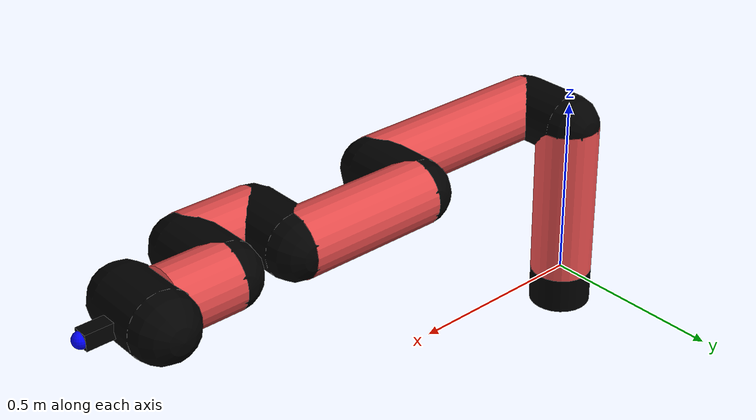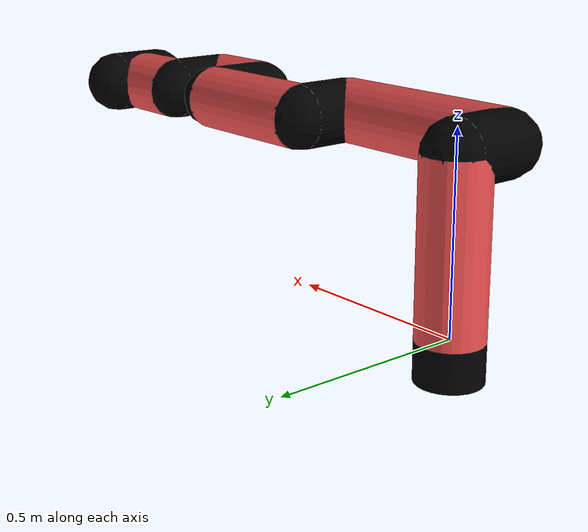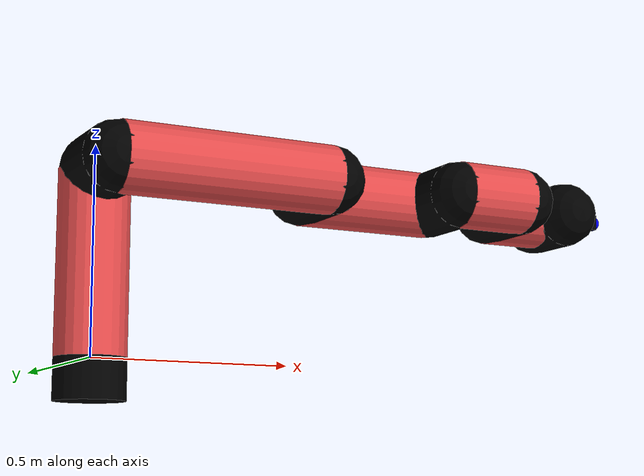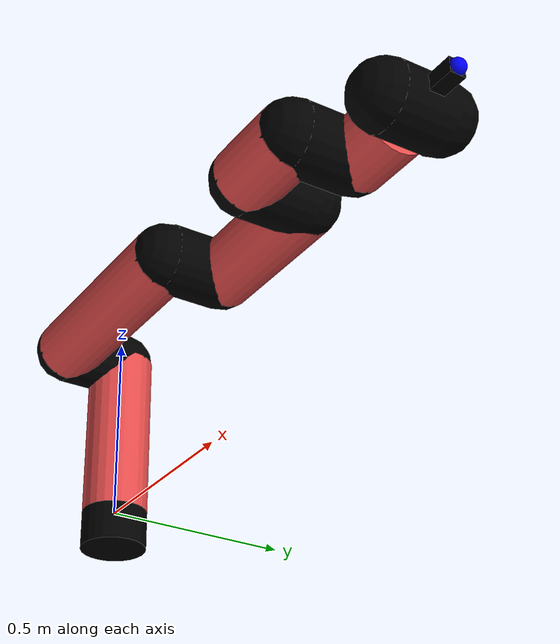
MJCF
<mujoco model="manipulator">
		<compiler angle="degree" coordinate="local" inertiafromgeom="auto" meshdir="meshes/"/>
		<option gravity="0 0 0" integrator="RK4" iterations="30" timestep="0.01"/>

		<default>
		<joint armature="1" limited="true" stiffness="10" damping="15" frictionloss="5.0"/>
		<geom conaffinity="1" condim="3" contype="1" friction=".5 .1 .1" margin="0.002"/>
		<motor ctrllimited="true"/>
		<position ctrllimited="true"/>
		</default>

		<asset>
		<texture builtin="gradient" height="100" rgb1="1.0 1.0 1.0" rgb2="1.0 1.0 1.0" type="skybox" width="100"/>
		<texture builtin="flat" height="32" name="arm_tex" rgb1="0.9 0.3 0.3" type="2d" width="32"/>
		<texture builtin="flat" height="32" name="gripper_tex" rgb1="0.0 0.0 0.0" type="cube" width="32"/>

		<material name="arm_mat" shininess="0.1" specular="0.1" texture="arm_tex"/>
		<material name="gripper_mat" shininess="1" specular="1" texture="gripper_tex"/>
		</asset>

		<worldbody>
		<light cutoff="45" diffuse=".8 .8 .8" dir="0 0.16 -1" directional="false" name="light" pos="0 -2.0 8.0" specular="0.3 0.3 0.3"/>

		<body name="base_link" pos="0 0 -0.1">
		<geom fromto="0 0 0 0 0 0.1" material="arm_mat" name="base_link" rgba="0.0 0.0 0.0 1" size="0.085" type="cylinder"/>
		</body>

		<body name="l1" pos="0 0 0">
<geom fromto="0 0 0 0 0 0.44" material="arm_mat" name="l1" rgba="0.9 0.3 0.3 1" size="0.085" type="cylinder"/>
<geom fromto="0 0 0.44 0 -0.16 0.44" material="arm_mat" name="l1_ex" rgba="0.0 0.0 0.0 1" size="0.085" type="capsule"/>
<joint axis="0 0 1" name="j1" pos="0 0 0" range="-90 90" damping="13.36" frictionloss="13.83"/>

<body name="l2" pos="0 -0.16 0.44">
<geom fromto="0 0 0 0.54 0 0" material="arm_mat" name="l2" rgba="0.9 0.3 0.3 1" size="0.085" type="cylinder"/>
<geom fromto="0.54 0 0 0.54 0.16 0" material="arm_mat" name="l2_ex" rgba="0.0 0.0 0.0 1" size="0.085" type="capsule"/>
<joint axis="0.0 1.0 0.0" name="j2" pos="0 0 0" range="-90 60" damping="18.17" frictionloss="14.41"/>

<body name="l3" pos="0.54 0.16 0">
<geom fromto="0 0 0 0.37 0 0" material="arm_mat" name="l3" rgba="0.9 0.3 0.3 1" size="0.085" type="cylinder"/>
<geom fromto="0.37 0 0 0.37 -0.16 0" material="arm_mat" name="l3_ex" rgba="0.0 0.0 0.0 1" size="0.085" type="capsule"/>
<joint axis="0.0 1.0 0.0" name="j3" pos="0 0 0" range="-30 60" damping="30.32" frictionloss="8.54"/>

<body name="l4" pos="0.37 -0.16 0">
<geom fromto="0 0 0 0.19 0 0" material="arm_mat" name="l4" rgba="0.9 0.3 0.3 1" size="0.085" type="cylinder"/>
<geom fromto="0.19 0 0 0.19 0.16 0" material="arm_mat" name="l4_ex" rgba="0.0 0.0 0.0 1" size="0.085" type="capsule"/>
<joint axis="0.0 1.0 0.0" name="j4" pos="0 0 0" range="-30 60" damping="36.27" frictionloss="9.2"/>

<body name="l5" pos="0.19 0.16 0">
<geom fromto="0 0 0 0.16 0 0" material="arm_mat" name="l5" rgba="0.9 0.3 0.3 1" size="0.085" type="cylinder"/>
<joint axis="0.0 1.0 0.0" name="j5" pos="0 0 0" range="-30 60" damping="35.97" frictionloss="7.55"/>

<body name="gripper" pos="0.16 0 0">
<geom fromto="0.05 -0.07 0 0.05 0.07 0" material="gripper_mat" name="gripper" rgba="0.0 0.0 0.0 1" size="0.085" type="capsule"/><joint axis="1 0 0" name="j6" pos="0 0 0" range="-90 90" damping="15" frictionloss="5.0"/><body name="finger" pos="0.1 0 0">
<geom fromto="0 0.0 0 0.1 0.0 0" material="gripper_mat" name="finger" rgba="0.0 0.0 0.0 1" size="0.020 0.06 0.06" type="box"/>
</body>
<site name="current" pos="0.2 0. 0.0" rgba="0. 0. 1.0 1" size="0.02" type="sphere"/>
</body>
</body>
</body>
</body>
</body>
</body>
</worldbody>
<actuator>
<motor ctrllimited="true" ctrlrange="-1.0 1.0" joint="j1" gear="124.37"/>
<motor ctrllimited="true" ctrlrange="-1.0 1.0" joint="j2" gear="125.48"/>
<motor ctrllimited="true" ctrlrange="-1.0 1.0" joint="j3" gear="65.31"/>
<motor ctrllimited="true" ctrlrange="-1.0 1.0" joint="j4" gear="50.64"/>
<motor ctrllimited="true" ctrlrange="-1.0 1.0" joint="j5" gear="79.98"/>
<motor ctrllimited="true" ctrlrange="-1.0 1.0" joint="j6" gear="80"/>
</actuator>
</mujoco>
